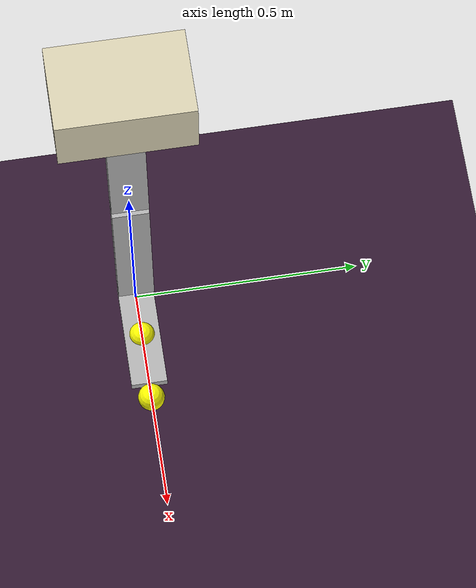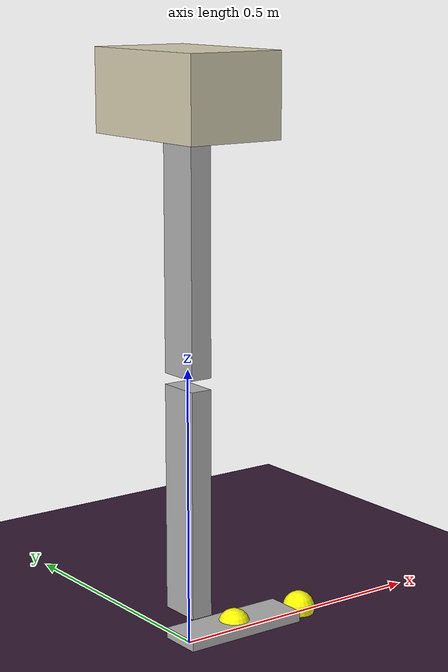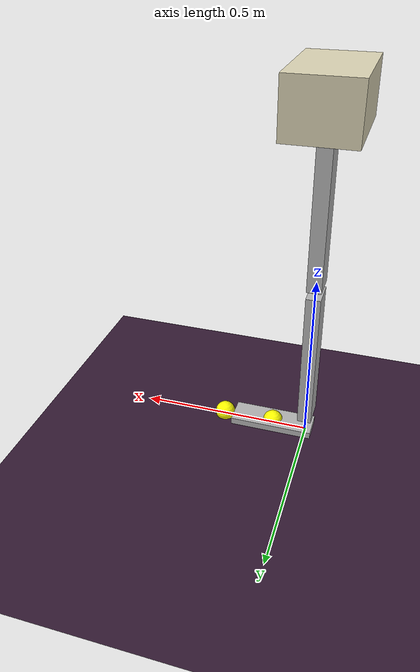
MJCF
<mujoco model="yuuki_robot_1joint">
  <!--
    以下のオプションは、親子の(bodyの)geomが接触しないようにXMLを変更したためコメントアウトした。
    有効にすると、親子の(bodyの)geomが接触するようになる。
  -->

  <default>
    <site size="0.03" rgba="1 1 0 1"/>
  </default>

  <asset>
    <texture type="skybox" builtin="gradient" rgb1="1 1 1" rgb2=".6 .8 1" width="256" height="256"/>
    <texture name="grid" type="2d" builtin="checker" width="512" height="512" rgb1=".3 .1 .1" rgb2=".1 .1 .3" />
    <material name="floor_mat" texture="grid" texrepeat="40 40"/>
    <material name="basket" rgba="0.85 0.82 0.7 1"/>
    <material name="servo" rgba="0.65 0.1 0.18 1"/>
    <material name="metal" rgba="0.7 0.7 0.7 1"/>
  </asset>

  <worldbody>
    <camera pos="0 -1 1" xyaxes="0 1 0 0 0 1"/>
    <light pos="0 0 10" dir="0 0 -1" diffuse="0.8 0.8 0.8"/>
    <geom name="floor" type="plane" size="25 25 0.1" material="floor_mat"/>

    <!-- 基準はカゴの底中央としている。 -->
    <body name="basket_thigh" pos="0 0 0.9">
      <freejoint name="root"/>

      <site name="imu_site" pos="0 0 0.05"/>

      <geom name="basket" type="box" pos="0 0 0.0725" size="0.09 0.14 0.0725" material="basket" mass="0.3"/>

      <!--
        【大腿リンク】
        docs/human_anthropometry.mdを参考に170cm / 70kgの男性の例の下限値を採用した。
        大腿の長さは 41 cm
        大腿の質量は 9.9 kg
      -->
      <geom name="thigh_link" type="box" pos="0 0 -0.205" size="0.02 0.04 0.205" material="metal" mass="9.9"/>

      <body name="shank" pos="0 0 -0.43">
        <!--
          膝関節は人間と同様に、真下を0°として、後ろに100°まで曲げられるようにする。
          人間と同様、前には曲げられないようにする。
        -->
        <joint name="knee" type="hinge" axis="0 1 0" range="0 100"/>

        <!--
          【下腿リンク】
          docs/human_anthropometry.mdを参考に170cm / 70kgの男性の例の下限値を採用した。
          下腿の長さは 41 cm
          下腿の質量は 3.0 kg
        -->
        <geom name="shank_link" type="box" pos="0 0 -0.205" size="0.02 0.04 0.205" material="metal" mass="3.0"/>

        <body name="foot" pos="0 0 -0.46">
          <!--
            踵関節は人間と同様に、真横を0°として、つま先を上に持ち上げる方向に20°まで、
            地面を蹴る方向に90°まで曲げられるようにする。
          -->
          <joint name="ankle" type="hinge" axis="0 1 0" range="-20 90"/>

          <site name="foot_site" pos="0.1 0 0"/>
          <site name="toe_site" pos="0.25 0 0"/>

          <!--
            【足底板】
            docs/human_anthropometry.mdを参考に170cm / 70kgの男性の例の下限値を採用した。
            足底板の長さは 24 cm
            足底板の幅は 8 cm
            足底板の質量は 1.0 kg
          -->
          <geom name="foot_plate" type="box" pos="0.1 0 0" size="0.12 0.04 0.01" material="metal" mass="1.0"/>
        </body>
      </body>

      <!-- 1 Leg -->
    </body>
  </worldbody>

  <actuator>
    <position
      name="knee_servo"
      joint="knee"
      kp="300"
      kv="1"
      ctrlrange="0 1.745"
      forcerange="-168 70"
      forcelimited="true"
    />

    <position
      name="ankle_servo"
      joint="ankle"
      kp="300"
      kv="1"
      ctrlrange="-0.349 1.571"
      forcerange="-21 98"
      forcelimited="true"
    />
  </actuator>

  <sensor>
    <gyro name="imu_gyro" site="imu_site"/>

    <framezaxis name="imu_zaxis" objtype="site" objname="imu_site"/>

    <framexaxis name="foot_xaxis" objtype="site" objname="foot_site"/>
    <framezaxis name="foot_zaxis" objtype="site" objname="foot_site"/>

    <framepos name="toe_pos" objtype="site" objname="toe_site"/>

  </sensor>
</mujoco>
